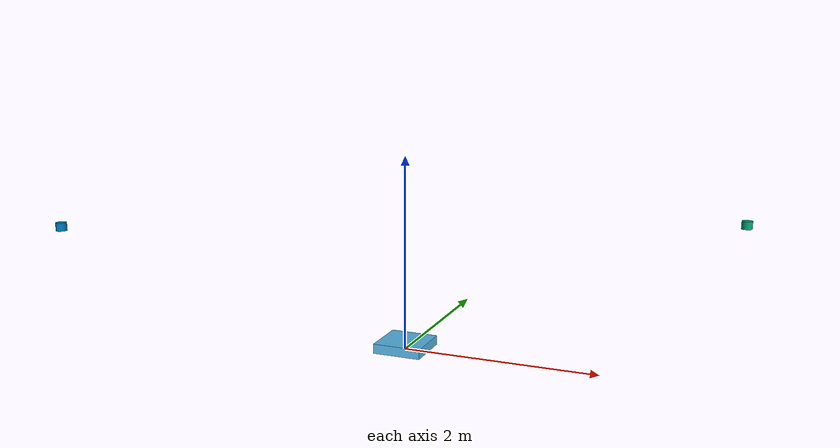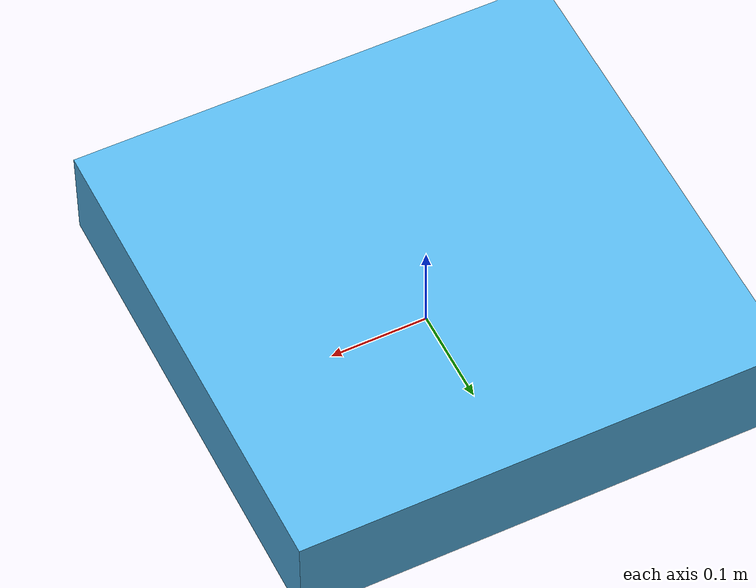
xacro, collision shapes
<?xml version="1.0"?>
<robot xmlns:xacro="http://www.ros.org/wiki/xacro" name="example">
  <xacro:arg name="gpu" default="false"/>
  <xacro:property name="gpu" value="$(arg gpu)" />
  <xacro:arg name="organize_cloud" default="false"/>
  <xacro:property name="organize_cloud" value="$(arg organize_cloud)" />

  <!-- Base Footprint -->
  <link name="base_footprint" />

  <!-- Base Link -->
  <joint name="footprint" type="fixed" >
   <parent link="base_footprint" />
    <child link="base_link" />
    <origin xyz="0 0 0.05" rpy="0 0 0" />
  </joint>
  <link name="base_link" >
    <visual>
      <geometry>
        <box size="0.5 0.5 0.1" />
      </geometry>
    </visual>
    <collision>
      <geometry>
        <box size="0.5 0.5 0.1" />
      </geometry>
    </collision>
    <inertial>
      <origin xyz="0 0 0"/>
      <mass value="100"/>
      <inertia ixx="3.0" ixy="0.0" ixz="0.0"
               iyy="3.0" iyz="0.0"
               izz="3.0" />
    </inertial>
  </link>

  <xacro:include filename="$(find robosense_description)/urdf/RS-16_F.urdf.xacro"/>
  <xacro:RS-16-F parent="base_link" name="robosense_F" topic="/rs_points_F" hz="20" samples="900" gpu="${gpu}">
    <origin xyz="3.165 1.345 1.25" rpy="0.0 3.14 -1.5707" />
  </xacro:RS-16-F>
  <xacro:include filename="$(find robosense_description)/urdf/RS-16_B.urdf.xacro"/>
  <xacro:RS-16-B parent="base_link" name="robosense_B" topic="/rs_points_B" hz="20" samples="900" gpu="${gpu}">
    <origin xyz="-3.165 -1.345 1.25" rpy="0.0 3.14 1.5707" />
  </xacro:RS-16-B>

</robot>

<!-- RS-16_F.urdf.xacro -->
<robot xmlns:xacro="http://www.ros.org/wiki/xacro" name="RS-16">
  <xacro:property name="M_PI" value="3.1415926535897931" />
  <xacro:macro name="RS-16-F" params="*origin parent:=base_link name:=robosense_F topic:=/robosense_points hz:=20 lasers:=16 samples:=900 collision_range:=0.4 min_range:=0.4 max_range:=150.0 noise:=0.008 min_angle:=-${M_PI} max_angle:=${M_PI} gpu:=false">

    <joint name="${name}_base_mount_joint" type="fixed">
      <xacro:insert_block name="origin" />
      <parent link="${parent}"/>
      <child link="${name}_base_link"/>
    </joint>

    <link name="${name}_base_link">
      <inertial>
        <mass value="0.87"/>
        <origin xyz="0 0 0"/>
        <inertia ixx="0.001094695" ixy="0" ixz="0"
          iyy="0.001094695" iyz="0"
          izz="0.001245079"/>
      </inertial>
      <visual>
        <origin rpy="-1.5707 0 0" xyz="0 0 0"/>
        <geometry>
          <mesh filename="package://robosense_description/meshes/robosense_16_F.dae" />
        </geometry>
      </visual>
      <collision>
        <origin rpy="0 0 0" xyz="0 0 0"/>
        <geometry>
          <cylinder radius="0.0535" length="0.0817"/>
        </geometry>
      </collision>
    </link>

    <joint name="${name}_base_scan_joint" type="fixed" >
      <origin xyz="0 0 0.039" rpy="0 0 0" />
      <parent link="${name}_base_link" />
      <child link="${name}"/>
    </joint>

    <link name="${name}">
      <inertial>
        <mass value="0.01"/>
        <origin xyz="0 0 0"/>
        <inertia ixx="1e-7" ixy="0" ixz="0" iyy="1e-7" iyz="0" izz="1e-7"/>
      </inertial>
    </link>

    <!-- Gazebo requires the robosense_gazebo_plugins package -->
    <gazebo reference="${name}">
      <xacro:if value="${gpu}">
        <sensor type="gpu_ray" name="${name}-RS16">
          <pose>0 0 0 0 0 0</pose>
          <visualize>false</visualize>
          <update_rate>${hz}</update_rate>
          <ray>
            <scan>
              <horizontal>
                <samples>${samples}</samples>
                <resolution>1</resolution>
                <min_angle>${min_angle}</min_angle>
                <max_angle>${max_angle}</max_angle>
              </horizontal>
              <vertical>
                <samples>${lasers}</samples>
                <resolution>1</resolution>
                <min_angle>-${15.0*M_PI/180.0}</min_angle>
                <max_angle> ${15.0*M_PI/180.0}</max_angle>
              </vertical>
            </scan>
            <range>
              <min>${collision_range}</min>
              <max>${max_range}</max>
              <resolution>0.001</resolution>
            </range>
            <noise>
              <type>gaussian</type>
              <mean>0.0</mean>
              <stddev>0.0</stddev>
            </noise>
          </ray>
          <plugin name="gazebo_ros_laser_controller" filename="libgazebo_ros_robosense_gpu_laser.so">
            <topicName>${topic}</topicName>
            <frameName>${name}</frameName>
            <min_range>${min_range}</min_range>
            <max_range>${max_range}</max_range>
            <gaussianNoise>${noise}</gaussianNoise>
          </plugin>
        </sensor>
      </xacro:if>
      <xacro:unless value="${gpu}">
        <sensor type="ray" name="${name}-RS16">
          <pose>0 0 0 0 0 0</pose>
          <visualize>false</visualize>
          <update_rate>${hz}</update_rate>
          <ray>
            <scan>
              <horizontal>
                <samples>${samples}</samples>
                <resolution>1</resolution>
                <min_angle>${min_angle}</min_angle>
                <max_angle>${max_angle}</max_angle>
              </horizontal>
              <vertical>
                <samples>${lasers}</samples>
                <resolution>1</resolution>
                <min_angle>-${15.0*M_PI/180.0}</min_angle>
                <max_angle> ${15.0*M_PI/180.0}</max_angle>
              </vertical>
            </scan>
            <range>
              <min>${collision_range}</min>
              <max>${max_range+1}</max>
              <resolution>0.001</resolution>
            </range>
            <noise>
              <type>gaussian</type>
              <mean>0.0</mean>
              <stddev>0.0</stddev>
            </noise>
          </ray>
          <plugin name="gazebo_ros_laser_controller" filename="libgazebo_ros_robosense_laser.so">
            <topicName>${topic}</topicName>
            <frameName>${name}</frameName>
            <min_range>${min_range}</min_range>
            <max_range>${max_range}</max_range>
            <gaussianNoise>${noise}</gaussianNoise>
          </plugin>
        </sensor>
      </xacro:unless>
    </gazebo>

  </xacro:macro>
</robot>

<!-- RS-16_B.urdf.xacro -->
<robot xmlns:xacro="http://www.ros.org/wiki/xacro" name="RS-16">
  <xacro:property name="M_PI" value="3.1415926535897931" />
  <xacro:macro name="RS-16-B" params="*origin parent:=base_link name:=robosense_B topic:=/robosense_points hz:=20 lasers:=16 samples:=900 collision_range:=0.4 min_range:=0.4 max_range:=150.0 noise:=0.008 min_angle:=-${M_PI} max_angle:=${M_PI} gpu:=false">

    <joint name="${name}_base_mount_joint" type="fixed">
      <xacro:insert_block name="origin" />
      <parent link="${parent}"/>
      <child link="${name}_base_link"/>
    </joint>

    <link name="${name}_base_link">
      <inertial>
        <mass value="0.87"/>
        <origin xyz="0 0 0"/>
        <inertia ixx="0.001094695" ixy="0" ixz="0"
          iyy="0.001094695" iyz="0"
          izz="0.001245079"/>
      </inertial>
      <visual>
        <origin rpy="-1.5707 0 0" xyz="0 0 0"/>
        <geometry>
          <mesh filename="package://robosense_description/meshes/robosense_16_B.dae" />
        </geometry>
      </visual>
      <collision>
        <origin rpy="0 0 0" xyz="0 0 0"/>
        <geometry>
          <cylinder radius="0.0535" length="0.0817"/>
        </geometry>
      </collision>
    </link>

    <joint name="${name}_base_scan_joint_B" type="fixed" >
      <origin xyz="0 0 0.039" rpy="0 0 0" />
      <parent link="${name}_base_link" />
      <child link="${name}"/>
    </joint>

    <link name="${name}">
      <inertial>
        <mass value="0.01"/>
        <origin xyz="0 0 0"/>
        <inertia ixx="1e-7" ixy="0" ixz="0" iyy="1e-7" iyz="0" izz="1e-7"/>
      </inertial>
    </link>

    <!-- Gazebo requires the robosense_gazebo_plugins package -->
    <gazebo reference="${name}">
      <xacro:if value="${gpu}">
        <sensor type="gpu_ray" name="${name}-RS16-B">
          <pose>0 0 0 0 0 0</pose>
          <visualize>false</visualize>
          <update_rate>${hz}</update_rate>
          <ray>
            <scan>
              <horizontal>
                <samples>${samples}</samples>
                <resolution>1</resolution>
                <min_angle>${min_angle}</min_angle>
                <max_angle>${max_angle}</max_angle>
              </horizontal>
              <vertical>
                <samples>${lasers}</samples>
                <resolution>1</resolution>
                <min_angle>-${15.0*M_PI/180.0}</min_angle>
                <max_angle> ${15.0*M_PI/180.0}</max_angle>
              </vertical>
            </scan>
            <range>
              <min>${collision_range}</min>
              <max>${max_range}</max>
              <resolution>0.001</resolution>
            </range>
            <noise>
              <type>gaussian</type>
              <mean>0.0</mean>
              <stddev>0.0</stddev>
            </noise>
          </ray>
          <plugin name="gazebo_ros_laser_controller" filename="libgazebo_ros_robosense_gpu_laser.so">
            <topicName>${topic}</topicName>
            <frameName>${name}</frameName>
            <min_range>${min_range}</min_range>
            <max_range>${max_range}</max_range>
            <gaussianNoise>${noise}</gaussianNoise>
          </plugin>
        </sensor>
      </xacro:if>
      <xacro:unless value="${gpu}">
        <sensor type="ray" name="${name}-RS16-B">
          <pose>0 0 0 0 0 0</pose>
          <visualize>false</visualize>
          <update_rate>${hz}</update_rate>
          <ray>
            <scan>
              <horizontal>
                <samples>${samples}</samples>
                <resolution>1</resolution>
                <min_angle>${min_angle}</min_angle>
                <max_angle>${max_angle}</max_angle>
              </horizontal>
              <vertical>
                <samples>${lasers}</samples>
                <resolution>1</resolution>
                <min_angle>-${15.0*M_PI/180.0}</min_angle>
                <max_angle> ${15.0*M_PI/180.0}</max_angle>
              </vertical>
            </scan>
            <range>
              <min>${collision_range}</min>
              <max>${max_range+1}</max>
              <resolution>0.001</resolution>
            </range>
            <noise>
              <type>gaussian</type>
              <mean>0.0</mean>
              <stddev>0.0</stddev>
            </noise>
          </ray>
          <plugin name="gazebo_ros_laser_controller" filename="libgazebo_ros_robosense_laser.so">
            <topicName>${topic}</topicName>
            <frameName>${name}</frameName>
            <min_range>${min_range}</min_range>
            <max_range>${max_range}</max_range>
            <gaussianNoise>${noise}</gaussianNoise>
          </plugin>
        </sensor>
      </xacro:unless>
    </gazebo>

  </xacro:macro>
</robot>
